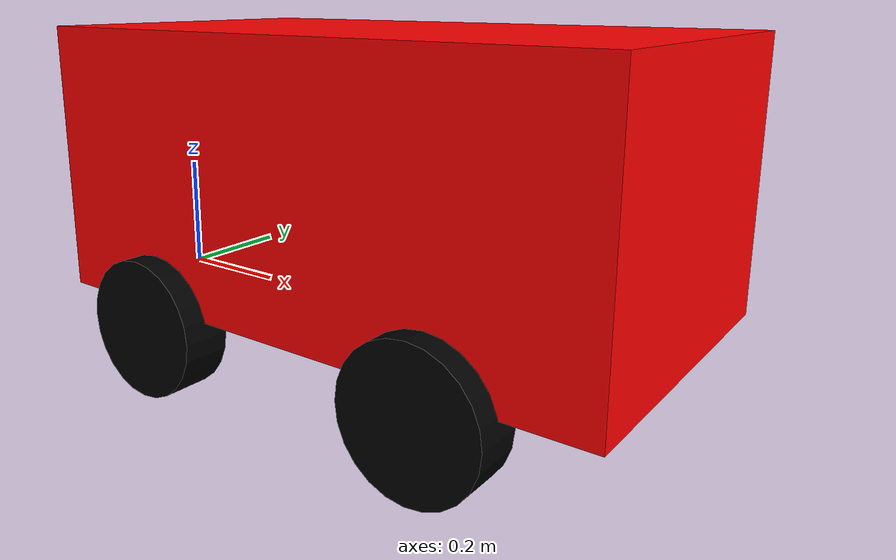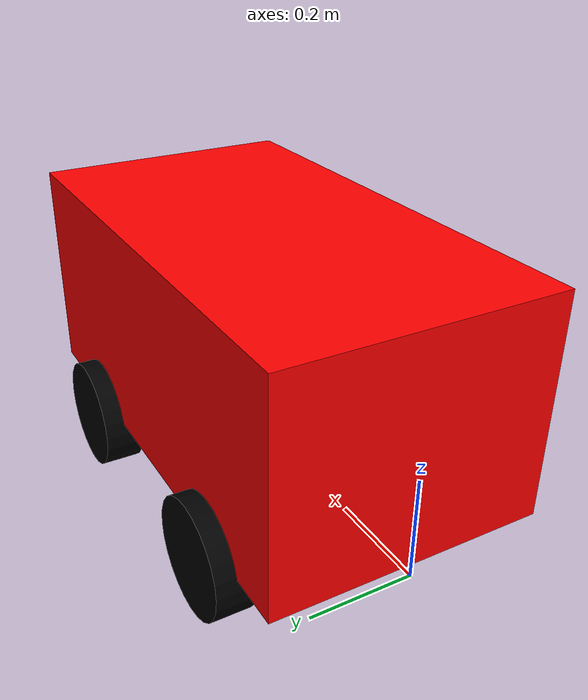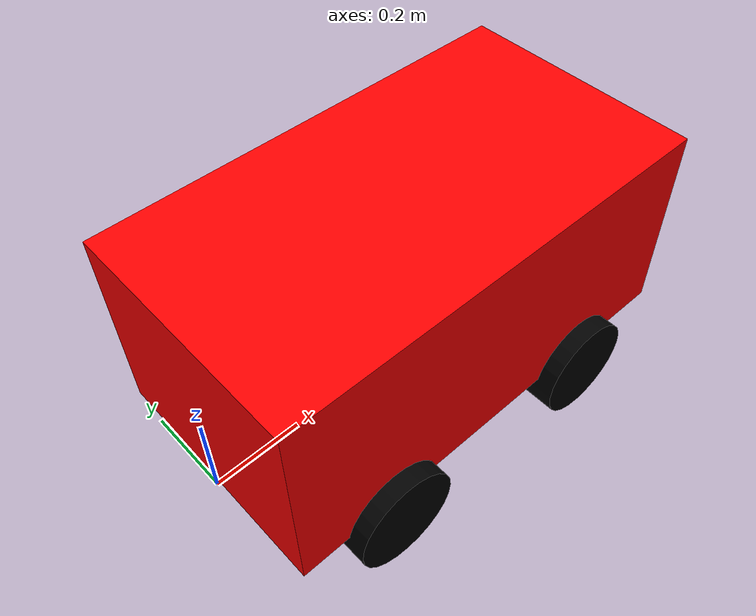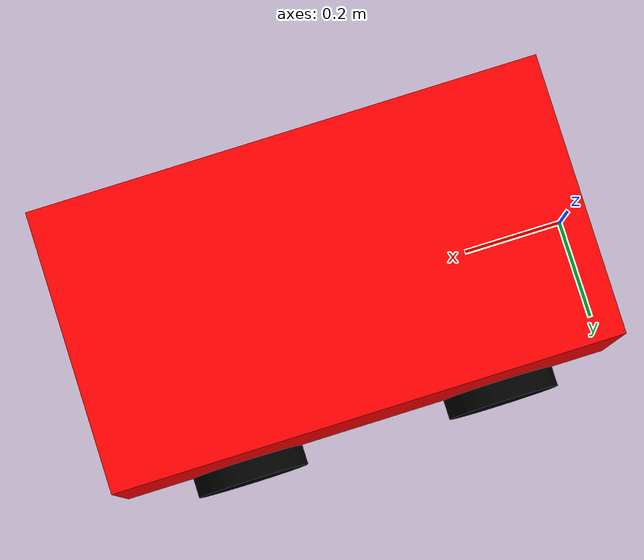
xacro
<?xml version="1.0"?>
<robot xmlns:xacro="http://www.ros.org/wiki/xacro">

    <xacro:include filename="inertial_macros.xacro" />

    <xacro:arg name="car_controller_yaml_file"
        default="$(find car_gazebo)/config/ackermann_controller.yaml" />

    <xacro:property name="bearing_friction_coeff" value="0.0015" />
    <xacro:property name="wheel_joint_damping" value="10" />
    <xacro:property name="steering_joint_damping" value="20" />
    <xacro:property name="gravity" value="9.81" />
    <xacro:property name="chassis_mass" value="8.0" />

    <material name="white">
        <color rgba="1 1 1 1" />
    </material>

    <material name="orange">
        <color rgba="1 0.3 0.1 1" />
    </material>

    <material name="blue">
        <color rgba="0.2 0.2 1 1" />
    </material>

    <material name="black">
        <color rgba="0 0 0 1" />
    </material>

    <material name="red">
        <color rgba="1 0 0 1" />
    </material>

    <link name="base_link">
    </link>
    <inertial>
        <mass value="0.01" />
        <inertia ixx="1.0" ixy="0.0" ixz="0.0" iyy="1.0" iyz="0.0" izz="1.0" />
    </inertial>

    <joint name="base_joint" type="fixed">
        <parent link="base_link" />
        <child link="base_footprint" />
        <origin xyz="0 0 -0.1" />
    </joint>

    <link name="base_footprint">
    </link>
    <inertial>
        <mass value="0.01" />
        <inertia ixx="1.0" ixy="0.0" ixz="0.0" iyy="1.0" iyz="0.0" izz="1.0" />
    </inertial>

    <joint name="chassis_joint" type="fixed">
        <parent link="base_link"></parent>
        <child link="chassis"></child>
    </joint>

    <link name="chassis">
        <visual>
            <origin xyz="0.5 0 0.25" />
            <geometry>
                <box size="1 0.55 0.45" />
            </geometry>
            <material name="red" />
        </visual>
        <collision>
            <origin xyz="0.5 0 0.25" />
            <geometry>
                <box size="1 0.55 0.45" />
            </geometry>
        </collision>
        <xacro:inertial_box mass="8" x="1" y="0.55" z="0.45">
            <origin xyz="0.5 0 0.25" rpy="0 0 0" />
        </xacro:inertial_box>
    </link>

    <gazebo reference="chassis">
        <material>Gazebo/Red</material>
    </gazebo>

    <!-- Left Steering Joint -->
    <joint
        name="left_steering_joint" type="revolute">
        <parent link="base_link" />
        <child link="left_steering_link" />
        <origin xyz="0.75 0.225 0" />
        <axis xyz="0 0 1" />
        <limit effort="100" lower="-0.523" upper="0.523" velocity="0.5" />
        <dynamics damping="${steering_joint_damping}"
            friction="${bearing_friction_coeff*gravity*chassis_mass}" />
    </joint>

    <link name="left_steering_link">
        <inertial>
            <mass value="0.001" />
            <inertia ixx="1.0" ixy="0.0" ixz="0.0" iyy="1.0" iyz="0.0" izz="1.0" />
        </inertial>
    </link>

    <joint name="front_left_wheel_joint" type="continuous">
        <parent link="left_steering_link" />
        <child link="front_left_wheel" />
        <origin xyz="0 0.05 0" rpy="-${pi/2} 0 0" />
        <axis xyz="0 0 1" />
    </joint>

    <link
        name="front_left_wheel">
        <visual>
            <geometry>
                <cylinder length="0.08" radius="0.115" />
            </geometry>
            <material name="black" />
        </visual>

        <collision>
            <geometry>
                <cylinder length="0.08" radius="0.115" />
            </geometry>
        </collision>

        <xacro:inertial_cylinder mass="0.8" length="0.08" radius="0.115">
            <origin xyz="0 0 0" rpy="0 0 0" />
        </xacro:inertial_cylinder>
    </link>
    <gazebo reference="front_left_wheel">
        <material>Gazebo/Black</material>
    </gazebo>

    <joint
        name="right_steering_joint" type="revolute">
        <parent link="base_link" />
        <child link="right_steering_link" />
        <origin xyz="0.75 -0.225 0" />
        <axis xyz="0 0 1 " />
        <limit effort="1000.0" lower="-0.523" upper="0.523" velocity="0.5" />
        <dynamics damping="${steering_joint_damping}"
            friction="${bearing_friction_coeff*gravity*chassis_mass}" />
    </joint>

    <link name="right_steering_link">
        <inertial>
            <mass value="0.001" />
            <inertia ixx="1.0" ixy="0.0" ixz="0.0" iyy="1.0" iyz="0.0" izz="1.0" />
        </inertial>
    </link>

    <joint name="front_right_wheel_joint" type="continuous">
        <parent link="right_steering_link" />
        <child link="front_right_wheel" />
        <origin xyz="0 -0.05 0" rpy="-${pi/2} 0 0" />
        <axis xyz="0 0 1" />
    </joint>

    <link
        name="front_right_wheel">
        <visual>
            <geometry>
                <cylinder length="0.08" radius="0.115" />
            </geometry>
            <material name="black" />
        </visual>

        <collision>
            <geometry>
                <cylinder length="0.08" radius="0.115" />
            </geometry>
        </collision>

        <xacro:inertial_cylinder mass="0.8" length="0.06" radius="0.04">
            <origin xyz="0 0 0" rpy="0 0 0" />
        </xacro:inertial_cylinder>
    </link>
    <gazebo reference="front_right_wheel">
        <material>Gazebo/Black</material>
    </gazebo>

    <joint
        name="rear_left_wheel_joint" type="continuous">
        <parent link="base_link" />
        <child link="rear_left_wheel" />
        <origin xyz="0.22 0.275 0" rpy="-${pi/2} 0 0" />
        <axis xyz="0 0 1" />
    </joint>

    <link
        name="rear_left_wheel">
        <visual>
            <geometry>
                <cylinder length="0.08" radius="0.115" />
            </geometry>
            <material name="black" />
        </visual>

        <collision>
            <geometry>
                <cylinder length="0.08" radius="0.115" />
            </geometry>
        </collision>

        <xacro:inertial_cylinder mass="0.8" length="0.06" radius="0.04">
            <origin xyz="0 0 0" rpy="0 0 0" />
        </xacro:inertial_cylinder>
    </link>
    <gazebo reference="rear_left_wheel">
        <material>Gazebo/Black</material>
    </gazebo>

    <joint
        name="rear_right_wheel_joint" type="continuous">
        <parent link="base_link" />
        <child link="rear_right_wheel" />
        <origin xyz="0.22 -0.275 0" rpy="${pi/2} 0 0" />
        <axis xyz="0 0 -1 " />
    </joint>

    <link
        name="rear_right_wheel">
        <visual>
            <geometry>
                <cylinder length="0.08" radius="0.115" />
            </geometry>
            <material name="black" />
        </visual>

        <collision>
            <geometry>
                <cylinder length="0.08" radius="0.115" />
            </geometry>
        </collision>

        <xacro:inertial_cylinder mass="0.8" length="0.06" radius="0.04">
            <origin xyz="0 0 0" rpy="0 0 0" />
        </xacro:inertial_cylinder>
    </link>
    <gazebo reference="rear_right_wheel">
        <material>Gazebo/Black</material>
    </gazebo>

    <!-- Ackermann driver -->
    <ros2_control name="GazeboSystem" type="system">
        <!-- the name of the hardware interface plugin to load -->
        <hardware>
            <plugin>gazebo_ros2_control/GazeboSystem</plugin>
        </hardware>
        <!-- talks to these joints of the car -->
        <joint name="rear_left_wheel_joint">
            <command_interface name="velocity" />
            <state_interface name="position" />
            <state_interface name="velocity" />
        </joint>
        <joint name="rear_right_wheel_joint">
            <command_interface name="velocity" />
            <state_interface name="position" />
            <state_interface name="velocity" />
        </joint>
        <joint name="left_steering_joint">
            <command_interface name="position" />
            <state_interface name="position" />
            <state_interface name="velocity" />
        </joint>
        <joint name="right_steering_joint">
            <command_interface name="position" />
            <state_interface name="position" />
            <state_interface name="velocity" />
        </joint>
    </ros2_control>

    <gazebo>
        <plugin filename="libgazebo_ros2_control.so" name="gazebo_ros2_control">
            <robot_param>robot_description</robot_param>
            <robot_param_node>robot_state_publisher</robot_param_node>
            <parameters>$(arg car_controller_yaml_file)</parameters>

        </plugin>
    </gazebo>

</robot>

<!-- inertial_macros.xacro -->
<robot xmlns:xacro="http://www.ros.org/wiki/xacro">

    <xacro:macro name="inertial_sphere" params="mass radius *origin">
        <inertial>
            <xacro:insert_block name="origin" />
            <mass value="${mass}" />
            <inertia ixx="${(2/5) * mass * (radius*radius)}" ixy="0.0" ixz="0.0"
                iyy="${(2/5) * mass * (radius*radius)}" iyz="0.0"
                izz="${(2/5) * mass * (radius*radius)}" />
        </inertial>
    </xacro:macro>

    <xacro:macro name="inertial_box" params="mass x y z *origin">
        <inertial>
            <xacro:insert_block name="origin" />
            <mass value="${mass}" />
            <inertia ixx="${(1/12) * mass * (y*y+z*z)}" ixy="0.0" ixz="0.0"
                iyy="${(1/12) * mass * (x*x+z*z)}" iyz="0.0"
                izz="${(1/12) * mass * (x*x+y*y)}" />
        </inertial>
    </xacro:macro>

    <xacro:macro name="inertial_cylinder" params="mass length radius *origin">
        <inertial>
            <xacro:insert_block name="origin" />
            <mass value="${mass}" />
            <inertia ixx="${(1/12) * mass * (3*radius*radius + length*length)}" ixy="0.0" ixz="0.0"
                iyy="${(1/12) * mass * (3*radius*radius + length*length)}" iyz="0.0"
                izz="${(1/2) * mass * (radius*radius)}" />
        </inertial>
    </xacro:macro>

</robot>
